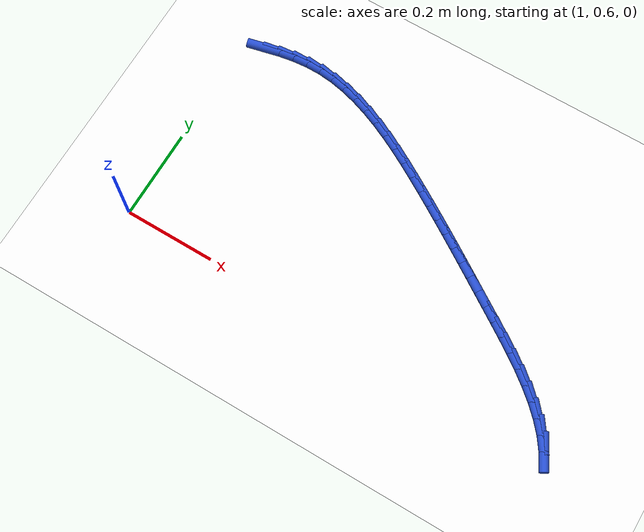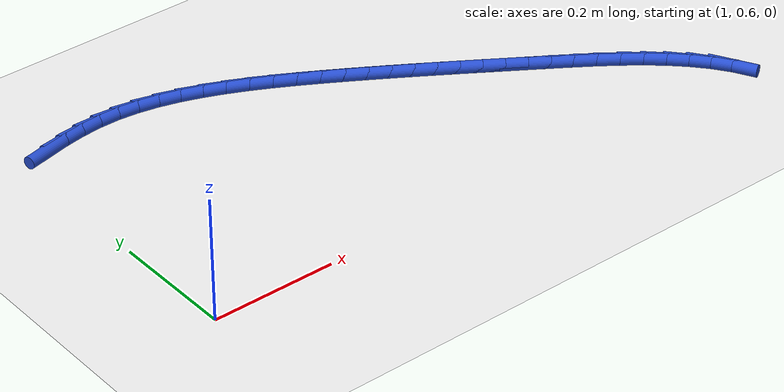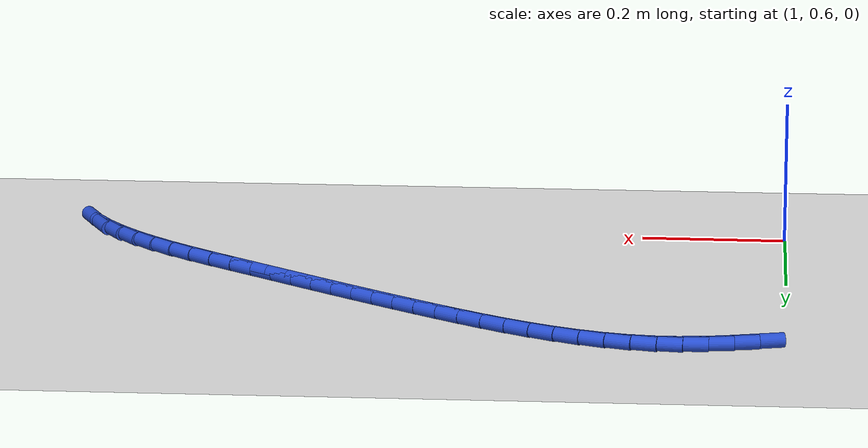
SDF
<sdf version="1.6">
 <world name="default">
  <model name="ground_plane">
   <static>1</static>
   <link name="link">
    <collision name="collision">
     <geometry><plane><normal>0 0 1</normal><size>100 100</size></plane></geometry>
     <surface><friction><ode><mu>100</mu><mu2>50</mu2></ode></friction></surface>
    </collision>
    <visual name="visual">
     <cast_shadows>0</cast_shadows>
     <geometry><plane><normal>0 0 1</normal><size>100 100</size></plane></geometry>
     <material>
      <script><uri>file://media/materials/scripts/gazebo.material</uri><name>Gazebo/WhiteGlow</name></script>
     </material>
    </visual>
   </link>
  </model>
  <model name="line">
   <link name="link_47">
    <pose>1.043502353431486 1.0660242862950562 0.01 0 1.57 0.2263278772536575</pose>
    <collision name="collision">
     <geometry><cylinder><radius>0.01</radius><length>0.08</length></cylinder></geometry>
    </collision>
    <visual name="visual">
     <material>
      <script><name>Gazebo/Blue</name><uri>file://media/materials/scripts/gazebo.material</uri></script>
     </material>
     <geometry><cylinder><radius>0.01</radius><length>0.08</length></cylinder></geometry>
    </visual>
   </link>
   <link name="link_48">
    <pose>1.0768306232299443 1.073698894717011 0.01 0 1.57 0.16406313685221804</pose>
    <collision name="collision">
     <geometry><cylinder><radius>0.01</radius><length>0.08</length></cylinder></geometry>
    </collision>
    <visual name="visual">
     <material>
      <script><name>Gazebo/Blue</name><uri>file://media/materials/scripts/gazebo.material</uri></script>
     </material>
     <geometry><cylinder><radius>0.01</radius><length>0.08</length></cylinder></geometry>
    </visual>
   </link>
   <link name="link_49">
    <pose>1.1100927187964746 1.079205473673794 0.01 0 1.57 0.08599049591824336</pose>
    <collision name="collision">
     <geometry><cylinder><radius>0.01</radius><length>0.08</length></cylinder></geometry>
    </collision>
    <visual name="visual">
     <material>
      <script><name>Gazebo/Blue</name><uri>file://media/materials/scripts/gazebo.material</uri></script>
     </material>
     <geometry><cylinder><radius>0.01</radius><length>0.08</length></cylinder></geometry>
    </visual>
   </link>
   <link name="link_50">
    <pose>1.143332761511702 1.0820708675048876 0.01 0 1.57 -0.007457082796193526</pose>
    <collision name="collision">
     <geometry><cylinder><radius>0.01</radius><length>0.08</length></cylinder></geometry>
    </collision>
    <visual name="visual">
     <material>
      <script><name>Gazebo/Blue</name><uri>file://media/materials/scripts/gazebo.material</uri></script>
     </material>
     <geometry><cylinder><radius>0.01</radius><length>0.08</length></cylinder></geometry>
    </visual>
   </link>
   <link name="link_51">
    <pose>1.1765947472734426 1.0818228255253663 0.01 0 1.57 -0.10786044686578283</pose>
    <collision name="collision">
     <geometry><cylinder><radius>0.01</radius><length>0.08</length></cylinder></geometry>
    </collision>
    <visual name="visual">
     <material>
      <script><name>Gazebo/Blue</name><uri>file://media/materials/scripts/gazebo.material</uri></script>
     </material>
     <geometry><cylinder><radius>0.01</radius><length>0.08</length></cylinder></geometry>
    </visual>
   </link>
   <link name="link_52">
    <pose>1.2098910041019675 1.0782174841642487 0.01 0 1.57 -0.19808350186419435</pose>
    <collision name="collision">
     <geometry><cylinder><radius>0.01</radius><length>0.08</length></cylinder></geometry>
    </collision>
    <visual name="visual">
     <material>
      <script><name>Gazebo/Blue</name><uri>file://media/materials/scripts/gazebo.material</uri></script>
     </material>
     <geometry><cylinder><radius>0.01</radius><length>0.08</length></cylinder></geometry>
    </visual>
   </link>
   <link name="link_53">
    <pose>1.2431605384846391 1.071539770997571 0.01 0 1.57 -0.2758722713030723</pose>
    <collision name="collision">
     <geometry><cylinder><radius>0.01</radius><length>0.08</length></cylinder></geometry>
    </collision>
    <visual name="visual">
     <material>
      <script><name>Gazebo/Blue</name><uri>file://media/materials/scripts/gazebo.material</uri></script>
     </material>
     <geometry><cylinder><radius>0.01</radius><length>0.08</length></cylinder></geometry>
    </visual>
   </link>
   <link name="link_54">
    <pose>1.2763320091883412 1.062149240832479 0.01 0 1.57 -0.34187705970006044</pose>
    <collision name="collision">
     <geometry><cylinder><radius>0.01</radius><length>0.08</length></cylinder></geometry>
    </collision>
    <visual name="visual">
     <material>
      <script><name>Gazebo/Blue</name><uri>file://media/materials/scripts/gazebo.material</uri></script>
     </material>
     <geometry><cylinder><radius>0.01</radius><length>0.08</length></cylinder></geometry>
    </visual>
   </link>
   <link name="link_55">
    <pose>1.3093340749799565 1.0504054484761185 0.01 0 1.57 -0.39705041844144895</pose>
    <collision name="collision">
     <geometry><cylinder><radius>0.01</radius><length>0.08</length></cylinder></geometry>
    </collision>
    <visual name="visual">
     <material>
      <script><name>Gazebo/Blue</name><uri>file://media/materials/scripts/gazebo.material</uri></script>
     </material>
     <geometry><cylinder><radius>0.01</radius><length>0.08</length></cylinder></geometry>
    </visual>
   </link>
   <link name="link_56">
    <pose>1.3420953946263674 1.0366679487356352 0.01 0 1.57 -0.44239847002535004</pose>
    <collision name="collision">
     <geometry><cylinder><radius>0.01</radius><length>0.08</length></cylinder></geometry>
    </collision>
    <visual name="visual">
     <material>
      <script><name>Gazebo/Blue</name><uri>file://media/materials/scripts/gazebo.material</uri></script>
     </material>
     <geometry><cylinder><radius>0.01</radius><length>0.08</length></cylinder></geometry>
    </visual>
   </link>
   <link name="link_57">
    <pose>1.3745446268944579 1.0212962964181744 0.01 0 1.57 -0.4788324909944102</pose>
    <collision name="collision">
     <geometry><cylinder><radius>0.01</radius><length>0.08</length></cylinder></geometry>
    </collision>
    <visual name="visual">
     <material>
      <script><name>Gazebo/Blue</name><uri>file://media/materials/scripts/gazebo.material</uri></script>
     </material>
     <geometry><cylinder><radius>0.01</radius><length>0.08</length></cylinder></geometry>
    </visual>
   </link>
   <link name="link_58">
    <pose>1.4066104305511111 1.0046500463308827 0.01 0 1.57 -0.50708901861214</pose>
    <collision name="collision">
     <geometry><cylinder><radius>0.01</radius><length>0.08</length></cylinder></geometry>
    </collision>
    <visual name="visual">
     <material>
      <script><name>Gazebo/Blue</name><uri>file://media/materials/scripts/gazebo.material</uri></script>
     </material>
     <geometry><cylinder><radius>0.01</radius><length>0.08</length></cylinder></geometry>
    </visual>
   </link>
   <link name="link_59">
    <pose>1.438221464363209 0.9870887532809057 0.01 0 1.57 -0.5276881528092047</pose>
    <collision name="collision">
     <geometry><cylinder><radius>0.01</radius><length>0.08</length></cylinder></geometry>
    </collision>
    <visual name="visual">
     <material>
      <script><name>Gazebo/Blue</name><uri>file://media/materials/scripts/gazebo.material</uri></script>
     </material>
     <geometry><cylinder><radius>0.01</radius><length>0.08</length></cylinder></geometry>
    </visual>
   </link>
   <link name="link_60">
    <pose>1.4693063870976357 0.9689719720753888 0.01 0 1.57 -0.5409907027923895</pose>
    <collision name="collision">
     <geometry><cylinder><radius>0.01</radius><length>0.08</length></cylinder></geometry>
    </collision>
    <visual name="visual">
     <material>
      <script><name>Gazebo/Blue</name><uri>file://media/materials/scripts/gazebo.material</uri></script>
     </material>
     <geometry><cylinder><radius>0.01</radius><length>0.08</length></cylinder></geometry>
    </visual>
   </link>
   <link name="link_61">
    <pose>1.4997963910785421 0.9506542758485372 0.01 0 1.57 -0.5498641520774867</pose>
    <collision name="collision">
     <geometry><cylinder><radius>0.01</radius><length>0.08</length></cylinder></geometry>
    </collision>
    <visual name="visual">
     <material>
      <script><name>Gazebo/Blue</name><uri>file://media/materials/scripts/gazebo.material</uri></script>
     </material>
     <geometry><cylinder><radius>0.01</radius><length>0.08</length></cylinder></geometry>
    </visual>
   </link>
   <link name="link_62">
    <pose>1.5297091451712355 0.9323202009840712 0.01 0 1.57 -0.5576747471915224</pose>
    <collision name="collision">
     <geometry><cylinder><radius>0.01</radius><length>0.08</length></cylinder></geometry>
    </collision>
    <visual name="visual">
     <material>
      <script><name>Gazebo/Blue</name><uri>file://media/materials/scripts/gazebo.material</uri></script>
     </material>
     <geometry><cylinder><radius>0.01</radius><length>0.08</length></cylinder></geometry>
    </visual>
   </link>
   <link name="link_63">
    <pose>1.5591681589802753 0.9139461717565712 0.01 0 1.57 -0.5645188190107896</pose>
    <collision name="collision">
     <geometry><cylinder><radius>0.01</radius><length>0.08</length></cylinder></geometry>
    </collision>
    <visual name="visual">
     <material>
      <script><name>Gazebo/Blue</name><uri>file://media/materials/scripts/gazebo.material</uri></script>
     </material>
     <geometry><cylinder><radius>0.01</radius><length>0.08</length></cylinder></geometry>
    </visual>
   </link>
   <link name="link_64">
    <pose>1.5883033981431234 0.8954959180978344 0.01 0 1.57 -0.5702987687697424</pose>
    <collision name="collision">
     <geometry><cylinder><radius>0.01</radius><length>0.08</length></cylinder></geometry>
    </collision>
    <visual name="visual">
     <material>
      <script><name>Gazebo/Blue</name><uri>file://media/materials/scripts/gazebo.material</uri></script>
     </material>
     <geometry><cylinder><radius>0.01</radius><length>0.08</length></cylinder></geometry>
    </visual>
   </link>
   <link name="link_65">
    <pose>1.6172448282972431 0.8769331699396603 0.01 0 1.57 -0.5749395836031098</pose>
    <collision name="collision">
     <geometry><cylinder><radius>0.01</radius><length>0.08</length></cylinder></geometry>
    </collision>
    <visual name="visual">
     <material>
      <script><name>Gazebo/Blue</name><uri>file://media/materials/scripts/gazebo.material</uri></script>
     </material>
     <geometry><cylinder><radius>0.01</radius><length>0.08</length></cylinder></geometry>
    </visual>
   </link>
   <link name="link_66">
    <pose>1.6461224150800964 0.8582216572138475 0.01 0 1.57 -0.5783917982291823</pose>
    <collision name="collision">
     <geometry><cylinder><radius>0.01</radius><length>0.08</length></cylinder></geometry>
    </collision>
    <visual name="visual">
     <material>
      <script><name>Gazebo/Blue</name><uri>file://media/materials/scripts/gazebo.material</uri></script>
     </material>
     <geometry><cylinder><radius>0.01</radius><length>0.08</length></cylinder></geometry>
    </visual>
   </link>
   <link name="link_67">
    <pose>1.6750661241291458 0.8393251098521932 0.01 0 1.57 -0.5806330580157035</pose>
    <collision name="collision">
     <geometry><cylinder><radius>0.01</radius><length>0.08</length></cylinder></geometry>
    </collision>
    <visual name="visual">
     <material>
      <script><name>Gazebo/Blue</name><uri>file://media/materials/scripts/gazebo.material</uri></script>
     </material>
     <geometry><cylinder><radius>0.01</radius><length>0.08</length></cylinder></geometry>
    </visual>
   </link>
   <link name="link_68">
    <pose>1.704205921081854 0.8202072577864971 0.01 0 1.57 -0.5816681969115279</pose>
    <collision name="collision">
     <geometry><cylinder><radius>0.01</radius><length>0.08</length></cylinder></geometry>
    </collision>
    <visual name="visual">
     <material>
      <script><name>Gazebo/Blue</name><uri>file://media/materials/scripts/gazebo.material</uri></script>
     </material>
     <geometry><cylinder><radius>0.01</radius><length>0.08</length></cylinder></geometry>
    </visual>
   </link>
   <link name="link_69">
    <pose>1.7336717715756842 0.8008318309485569 0.01 0 1.57 -0.5816729274176559</pose>
    <collision name="collision">
     <geometry><cylinder><radius>0.01</radius><length>0.08</length></cylinder></geometry>
    </collision>
    <visual name="visual">
     <material>
      <script><name>Gazebo/Blue</name><uri>file://media/materials/scripts/gazebo.material</uri></script>
     </material>
     <geometry><cylinder><radius>0.01</radius><length>0.08</length></cylinder></geometry>
    </visual>
   </link>
   <link name="link_70">
    <pose>1.7635863780623269 0.781161119520486 0.01 0 1.57 -0.5858528518757431</pose>
    <collision name="collision">
     <geometry><cylinder><radius>0.01</radius><length>0.08</length></cylinder></geometry>
    </collision>
    <visual name="visual">
     <material>
      <script><name>Gazebo/Blue</name><uri>file://media/materials/scripts/gazebo.material</uri></script>
     </material>
     <geometry><cylinder><radius>0.01</radius><length>0.08</length></cylinder></geometry>
    </visual>
   </link>
   <link name="link_71">
    <pose>1.7938104219180102 0.761105474387644 0.01 0 1.57 -0.6006071684975742</pose>
    <collision name="collision">
     <geometry><cylinder><radius>0.01</radius><length>0.08</length></cylinder></geometry>
    </collision>
    <visual name="visual">
     <material>
      <script><name>Gazebo/Blue</name><uri>file://media/materials/scripts/gazebo.material</uri></script>
     </material>
     <geometry><cylinder><radius>0.01</radius><length>0.08</length></cylinder></geometry>
    </visual>
   </link>
   <link name="link_72">
    <pose>1.8238755280189038 0.7405100189983462 0.01 0 1.57 -0.6265730978706281</pose>
    <collision name="collision">
     <geometry><cylinder><radius>0.01</radius><length>0.08</length></cylinder></geometry>
    </collision>
    <visual name="visual">
     <material>
      <script><name>Gazebo/Blue</name><uri>file://media/materials/scripts/gazebo.material</uri></script>
     </material>
     <geometry><cylinder><radius>0.01</radius><length>0.08</length></cylinder></geometry>
    </visual>
   </link>
   <link name="link_73">
    <pose>1.8532924324882212 0.7192157361143738 0.01 0 1.57 -0.6644932170876423</pose>
    <collision name="collision">
     <geometry><cylinder><radius>0.01</radius><length>0.08</length></cylinder></geometry>
    </collision>
    <visual name="visual">
     <material>
      <script><name>Gazebo/Blue</name><uri>file://media/materials/scripts/gazebo.material</uri></script>
     </material>
     <geometry><cylinder><radius>0.01</radius><length>0.08</length></cylinder></geometry>
    </visual>
   </link>
   <link name="link_74">
    <pose>1.881571871449176 0.6970636084975079 0.01 0 1.57 -0.7155880413427395</pose>
    <collision name="collision">
     <geometry><cylinder><radius>0.01</radius><length>0.08</length></cylinder></geometry>
    </collision>
    <visual name="visual">
     <material>
      <script><name>Gazebo/Blue</name><uri>file://media/materials/scripts/gazebo.material</uri></script>
     </material>
     <geometry><cylinder><radius>0.01</radius><length>0.08</length></cylinder></geometry>
    </visual>
   </link>
   <link name="link_75">
    <pose>1.9082245810249825 0.6738946189095303 0.01 0 1.57 -0.7814734434627163</pose>
    <collision name="collision">
     <geometry><cylinder><radius>0.01</radius><length>0.08</length></cylinder></geometry>
    </collision>
    <visual name="visual">
     <material>
      <script><name>Gazebo/Blue</name><uri>file://media/materials/scripts/gazebo.material</uri></script>
     </material>
     <geometry><cylinder><radius>0.01</radius><length>0.08</length></cylinder></geometry>
    </visual>
   </link>
   <link name="link_76">
    <pose>1.9327612973388544 0.6495497501122229 0.01 0 1.57 -0.8639634762964636</pose>
    <collision name="collision">
     <geometry><cylinder><radius>0.01</radius><length>0.08</length></cylinder></geometry>
    </collision>
    <visual name="visual">
     <material>
      <script><name>Gazebo/Blue</name><uri>file://media/materials/scripts/gazebo.material</uri></script>
     </material>
     <geometry><cylinder><radius>0.01</radius><length>0.08</length></cylinder></geometry>
    </visual>
   </link>
   <link name="link_77">
    <pose>1.9546927565140049 0.6238699848673661 0.01 0 1.57 -0.9646451376301738</pose>
    <collision name="collision">
     <geometry><cylinder><radius>0.01</radius><length>0.08</length></cylinder></geometry>
    </collision>
    <visual name="visual">
     <material>
      <script><name>Gazebo/Blue</name><uri>file://media/materials/scripts/gazebo.material</uri></script>
     </material>
     <geometry><cylinder><radius>0.01</radius><length>0.08</length></cylinder></geometry>
    </visual>
   </link>
   <link name="link_78">
    <pose>1.9735296946736482 0.5966963059367418 0.01 0 1.57 -1.0827064627846457</pose>
    <collision name="collision">
     <geometry><cylinder><radius>0.01</radius><length>0.08</length></cylinder></geometry>
    </collision>
    <visual name="visual">
     <material>
      <script><name>Gazebo/Blue</name><uri>file://media/materials/scripts/gazebo.material</uri></script>
     </material>
     <geometry><cylinder><radius>0.01</radius><length>0.08</length></cylinder></geometry>
    </visual>
   </link>
  </model>
 </world>
</sdf>
